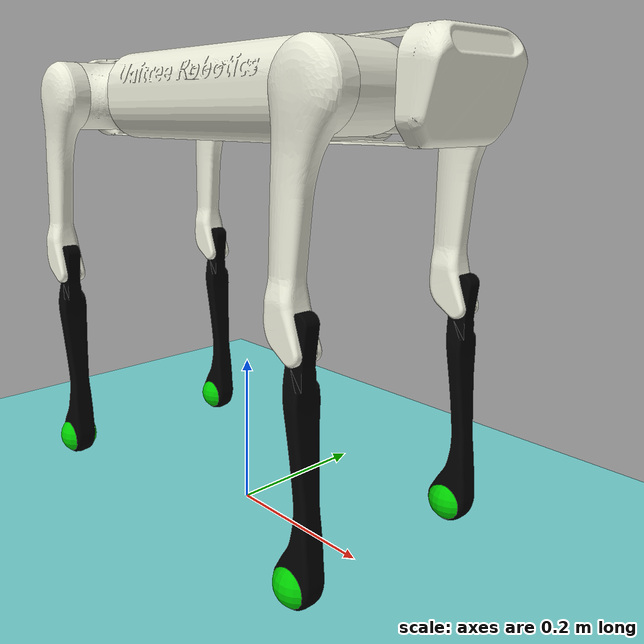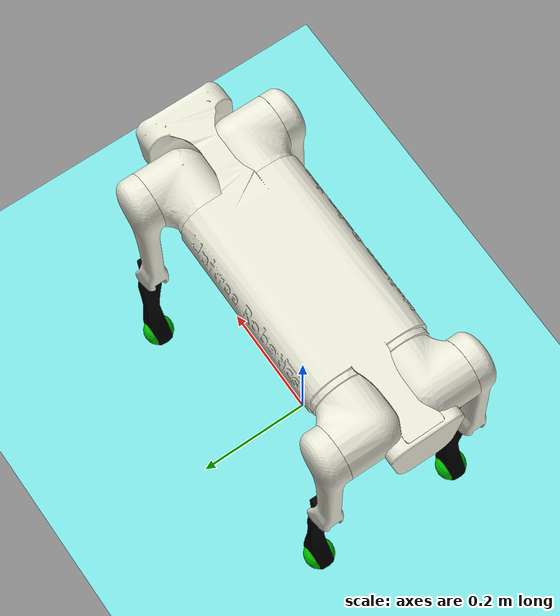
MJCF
<mujoco model="aliengo">
    <compiler angle="radian" meshdir="../meshes/" />

    <option iterations="50" timestep="0.002" />
    <custom>
        <!-- brax custom params -->
        <numeric data="0.0 0.0 0.34 1.0 0.0 0.0 0.0 -0.01014303 0.7180088 -1.4360176 0.01014303 0.7180088 -1.4360176 -0.01014303 0.7180088 -1.4360176 0.01014303 0.7180088 -1.4360176" name="init_qpos"/>
        <numeric data="0" name="matrix_inv_iterations"/>
        <numeric data="20" name="solver_maxls"/>
    </custom>

    <default>
        <geom contype="0" conaffinity="0" condim='3' rgba="0.913725 0.913725 0.847059 1" group="1" />
        <light castshadow="false" diffuse="1 1 1"/>
        <motor ctrlrange="-33.5 33.5" ctrllimited="false"/>
        <camera fovy="60"/>
        <joint damping="0.1" armature="0.01" frictionloss="0.0" />
    </default>

    <asset>
        <mesh name="trunk" file="trunk.stl" />
        <mesh name="hip" file="hip.stl" />
        <mesh name="thigh_mirror" file="thigh_mirror.stl" />
        <mesh name="calf" file="calf.stl" />
        <mesh name="thigh" file="thigh.stl" />
    </asset>

    <asset>
        <texture type="skybox" builtin="gradient" rgb1="1.0 1.0 1.0" rgb2="1.0 1.0 1.0" width="512" height="512"/>
        <texture name="plane" type="2d" builtin="flat" rgb1="1 1 1" rgb2="1 1 1" width="512" height="512" mark="cross" markrgb="0 0 0"/>
        <material name="plane" reflectance="0.0" texture="plane" texrepeat="3 3" texuniform="true"/>
        <material name="orange" rgba="1.0 0.423529411765 0.0392156862745 1.0"/>
        <material name="green" rgba="0.0 0.8 0.0 1.0"/>
    </asset>

    <visual>
        <rgba com="0.502 1.0 0 0.5" contactforce="0.98 0.4 0.4 0.7" contactpoint="1.0 1.0 0.6 0.4"/>
        <scale com="0.2" forcewidth="0.035" contactwidth="0.10" contactheight="0.04"/>
    </visual>

    <worldbody>
        <light directional="true" diffuse=".8 .8 .8" pos="0 0 10" dir="0 0 -10"/>
        <camera name="track" mode="trackcom" pos="0 -1.3 1.6" xyaxes="1 0 0 0 0.707 0.707"/>
        <geom name='floor' type='plane' contype='1' conaffinity='0' rgba="0.5 0.9 0.9 0.1" material='plane' pos='0 0 0' size='0 0 1'/>

        <body name="trunk" pos="0 0 0.55">
            <inertial pos="0.008465 0.004045 -0.000763" mass="9.041" diaginertia="0.033260231 0.16117211 0.17460442" />
            <joint name="trunk" type="free" damping="0" armature="0" frictionloss="0"/>
            <geom type="mesh" contype="0" conaffinity="0" group="1" rgba="0.913725 0.913725 0.847059 1" mesh="trunk" />

            <body name="FR_hip" pos="0.2399 -0.051 0">
                <inertial pos="-0.022191 -0.015144 -1.5e-05" mass="1.993" diaginertia="0.002903894 0.004907517 0.005586944" />
                <joint name="FR_hip_joint" pos="0 0 0" axis="1 0 0" limited="true" range="-0.873 1.047" />
                <geom quat="0 1 0 0" type="mesh" contype="0" conaffinity="0" group="1" rgba="0.913725 0.913725 0.847059 1" mesh="hip" />

                <body name="FR_thigh" pos="0 -0.083 0">
                    <inertial pos="-0.005607 0.003877 -0.048199" mass="0.639" diaginertia="0.005666803 0.005847229 0.000369811" />
                    <joint name="FR_thigh_joint" pos="0 0 0" axis="0 1 0" limited="true" range="-0.524 3.927" />
                    <geom type="mesh" contype="0" conaffinity="0" group="1" rgba="0.913725 0.913725 0.847059 1" mesh="thigh_mirror" />
                    <body name="FR_calf" pos="0 0 -0.25">
                        <inertial pos="0.002156 6.3e-05 -0.16666" mass="0.267" diaginertia="0.006341369 0.006355157 3.9188e-05" />
                        <joint name="FR_calf_joint" pos="0 0 0" axis="0 1 0" limited="true" range="-2.775 -0.611" />
                        <geom type="mesh" contype="0" conaffinity="0" group="1" rgba="0 0 0 1" mesh="calf" />
                        <geom size="0.0265" pos="0 0 -0.25" type="sphere" contype="1" conaffinity="1" rgba="0 0.8 0 1" />
                    </body>
                </body>
            </body>

            <body name="FL_hip" pos="0.2399 0.051 0">
                <inertial pos="-0.022191 0.015144 -1.5e-05" mass="1.993" diaginertia="0.002903894 0.004907517 0.005586944" />
                <joint name="FL_hip_joint" pos="0 0 0" axis="1 0 0" limited="true" range="-0.873 1.047" />
                <geom type="mesh" contype="0" conaffinity="0" group="1" rgba="0.913725 0.913725 0.847059 1" mesh="hip" />

                <body name="FL_thigh" pos="0 0.083 0">
                    <inertial pos="-0.005607 -0.003877 -0.048199" mass="0.639" diaginertia="0.005666803 0.005847229 0.000369811" />
                    <joint name="FL_thigh_joint" pos="0 0 0" axis="0 1 0" limited="true" range="-0.524 3.927" />
                    <geom type="mesh" contype="0" conaffinity="0" group="1" rgba="0.913725 0.913725 0.847059 1" mesh="thigh" />

                    <body name="FL_calf" pos="0 0 -0.25">
                        <inertial pos="0.002156 6.3e-05 -0.16666" mass="0.267" diaginertia="0.006341369 0.006355157 3.9188e-05" />
                        <joint name="FL_calf_joint" pos="0 0 0" axis="0 1 0" limited="true" range="-2.775 -0.611" />
                        <geom type="mesh" contype="0" conaffinity="0" group="1" rgba="0 0 0 1" mesh="calf" />
                        <geom size="0.0265" pos="0 0 -0.25" type="sphere" contype="1" conaffinity="1" rgba="0 0.8 0 1" />
                    </body>
                </body>
            </body>

            <body name="RR_hip" pos="-0.2399 -0.051 0">
                <inertial pos="0.022191 -0.015144 -1.5e-05" mass="1.993" diaginertia="0.002903894 0.004907517 0.005586944" />
                <joint name="RR_hip_joint" pos="0 0 0" axis="1 0 0" limited="true" range="-0.873 1.047" />
                <geom quat="0 0 0 -1" type="mesh" contype="0" conaffinity="0" group="1" rgba="0.913725 0.913725 0.847059 1" mesh="hip" />

                <body name="RR_thigh" pos="0 -0.083 0">
                    <inertial pos="-0.005607 0.003877 -0.048199" mass="0.639" diaginertia="0.005666803 0.005847229 0.000369811" />
                    <joint name="RR_thigh_joint" pos="0 0 0" axis="0 1 0" limited="true" range="-0.524 3.927" />
                    <geom type="mesh" contype="0" conaffinity="0" group="1" rgba="0.913725 0.913725 0.847059 1" mesh="thigh_mirror" />

                    <body name="RR_calf" pos="0 0 -0.25">
                        <inertial pos="0.002156 6.3e-05 -0.16666" mass="0.267" diaginertia="0.006341369 0.006355157 3.9188e-05" />
                        <joint name="RR_calf_joint" pos="0 0 0" axis="0 1 0" limited="true" range="-2.775 -0.611" />
                        <geom type="mesh" contype="0" conaffinity="0" group="1" rgba="0 0 0 1" mesh="calf" />
                        <geom size="0.0265" pos="0 0 -0.25" type="sphere" contype="1" conaffinity="1" rgba="0 0.8 0 1" />
                    </body>
                </body>
            </body>

            <body name="RL_hip" pos="-0.2399 0.051 0">
                <inertial pos="0.022191 0.015144 -1.5e-05" mass="1.993" diaginertia="0.002903894 0.004907517 0.005586944" />
                <joint name="RL_hip_joint" pos="0 0 0" axis="1 0 0" limited="true" range="-0.873 1.047" />
                <geom quat="0 0 1 0" type="mesh" contype="0" conaffinity="0" group="1" rgba="0.913725 0.913725 0.847059 1" mesh="hip" />

                <body name="RL_thigh" pos="0 0.083 0">
                    <inertial pos="-0.005607 -0.003877 -0.048199" mass="0.639" diaginertia="0.005666803 0.005847229 0.000369811" />
                    <joint name="RL_thigh_joint" pos="0 0 0" axis="0 1 0" limited="true" range="-0.524 3.927" />
                    <geom type="mesh" contype="0" conaffinity="0" group="1" rgba="0.913725 0.913725 0.847059 1" mesh="thigh" />

                    <body name="RL_calf" pos="0 0 -0.25">
                        <inertial pos="0.002156 6.3e-05 -0.16666" mass="0.267" diaginertia="0.006341369 0.006355157 3.9188e-05" />
                        <joint name="RL_calf_joint" pos="0 0 0" axis="0 1 0" limited="true" range="-2.775 -0.611" />
                        <geom type="mesh" contype="0" conaffinity="0" group="1" rgba="0 0 0 1" mesh="calf" />
                        <geom size="0.0265" pos="0 0 -0.25" type="sphere" contype="1" conaffinity="1" rgba="0 0.8 0 1" />
                    </body>
                </body>
            </body>
        </body>
    </worldbody>

    <actuator>
        <motor name="FR_hip"       gear="1" joint="FR_hip_joint" ctrlrange="-44 44"/>
        <motor name="FR_thigh"     gear="1" joint="FR_thigh_joint" ctrlrange="-44 44"/>
        <motor name="FR_calf"      gear="1" joint="FR_calf_joint" ctrlrange="-55 55"/>
        <motor name="FL_hip"       gear="1" joint="FL_hip_joint" ctrlrange="-44 44"/>
        <motor name="FL_thigh"     gear="1" joint="FL_thigh_joint" ctrlrange="-44 44"/>
        <motor name="FL_calf"      gear="1" joint="FL_calf_joint" ctrlrange="-55 55"/>
        <motor name="RR_hip"       gear="1" joint="RR_hip_joint" ctrlrange="-44 44"/>
        <motor name="RR_thigh"     gear="1" joint="RR_thigh_joint" ctrlrange="-44 44"/>
        <motor name="RR_calf"      gear="1" joint="RR_calf_joint" ctrlrange="-55 55"/>
        <motor name="RL_hip"       gear="1" joint="RL_hip_joint" ctrlrange="-44 44"/>
        <motor name="RL_thigh"     gear="1" joint="RL_thigh_joint" ctrlrange="-44 44"/>
        <motor name="RL_calf"      gear="1" joint="RL_calf_joint" ctrlrange="-55 55"/>
    </actuator>
</mujoco>
